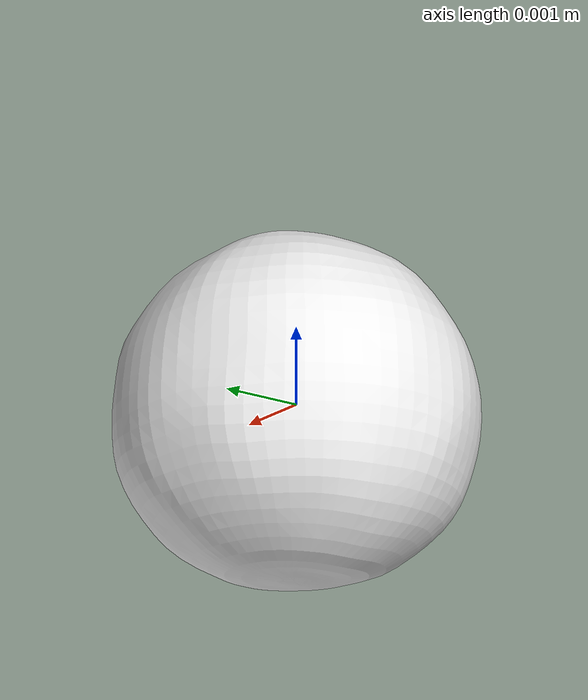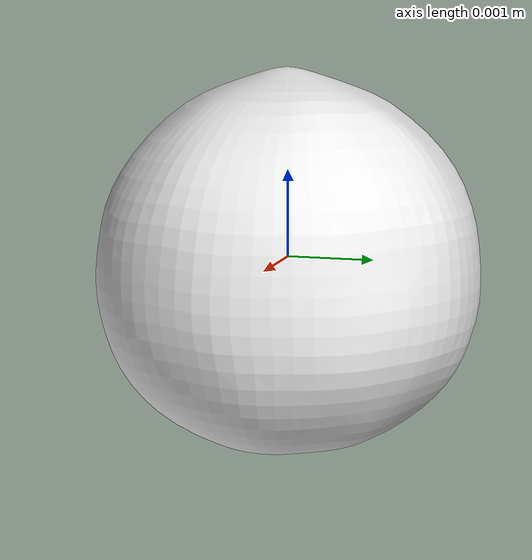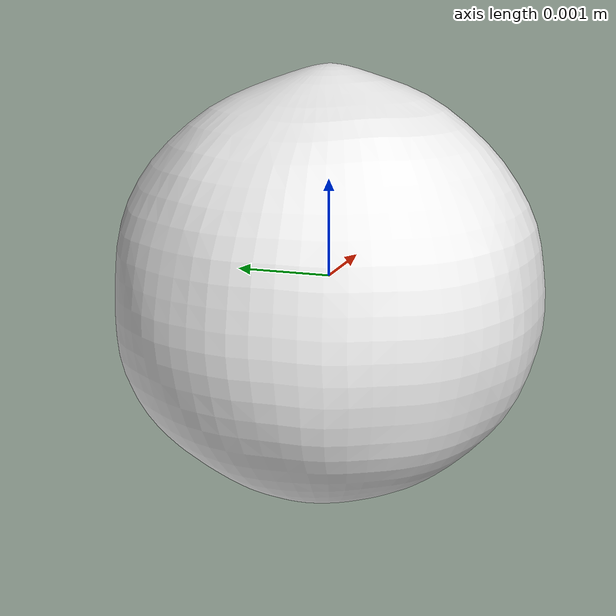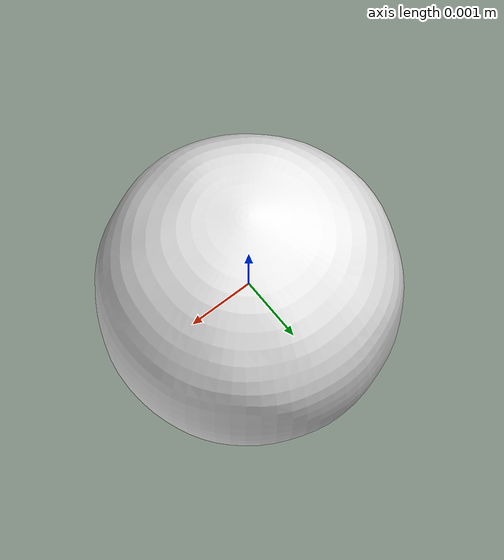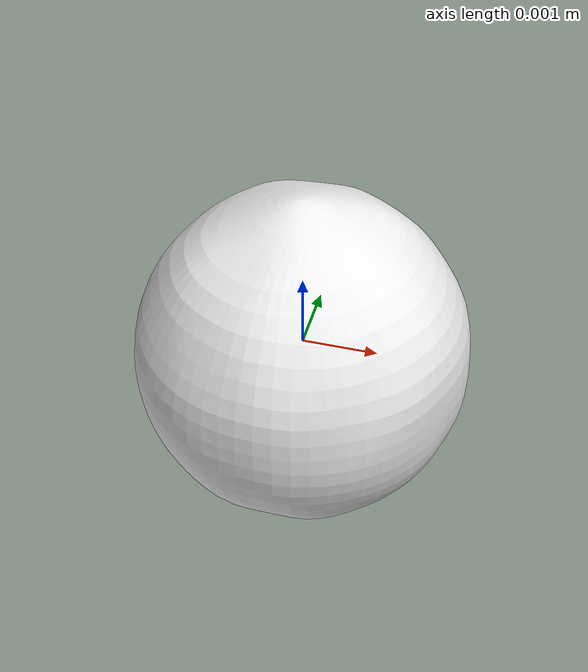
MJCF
<?xml version="1.0" ?>
<mujoco model="pepper_white">
	<compiler meshdir="pepper_white/meshes" texturedir="pepper_white/textures" angle="radian" autolimits="true" balanceinertia="true" boundmass="0.000001" boundinertia="0.000001"/>
	<default>
		<default class="visual">
			<geom contype="0" conaffinity="0"/>
		</default>
		<default class="collision">
			<geom rgba="1.0 0.0 0.0 0.0"/>
		</default>
	</default>
	<asset>
		<mesh name="PepperWhite" file="obj/PepperWhite.obj" scale="1.0 1.0 1.0"/>
		<mesh name="PepperWhite_001" file="stl/PepperWhite_001.stl" scale="1.0 1.0 1.0"/>
		<material name="M_PepperWhite" texture="T_PepperWhite"/>
		<texture name="T_PepperWhite" type="2d" file="T_PepperWhite.png"/>
	</asset>
	<worldbody>
		<body name="pepper_white" pos="0.0 0.0 0.0" quat="1.0 0.0 0.0 0.0">
			<inertial mass="2.5312963771284558e-05" pos="7.757628850413312e-08 1.2328382581472397e-07 -0.00011824795365100726" quat="0.9739362597465515 -0.025069527328014374 -0.016999274492263794 0.22479039430618286" diaginertia="4.891242272320184e-11 4.9044462935299293e-11 4.9462375167896866e-11"/>
			<geom name="PepperWhite" type="mesh" pos="0.0 0.0 0.0" quat="1.0 0.0 0.0 0.0" mesh="PepperWhite" material="M_PepperWhite" class="visual"/>
			<geom name="PepperWhite_001" type="mesh" pos="0.0 0.0 0.0" quat="1.0 0.0 0.0 0.0" mesh="PepperWhite_001" class="collision"/>
		</body>
	</worldbody>
	<equality/>
</mujoco>
